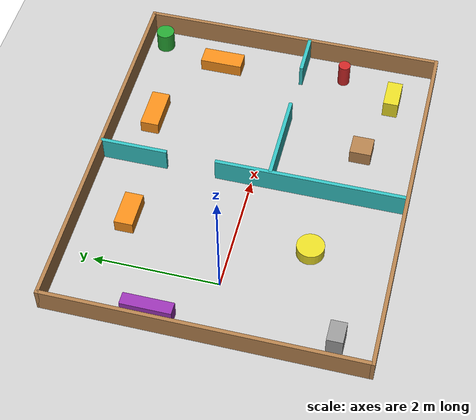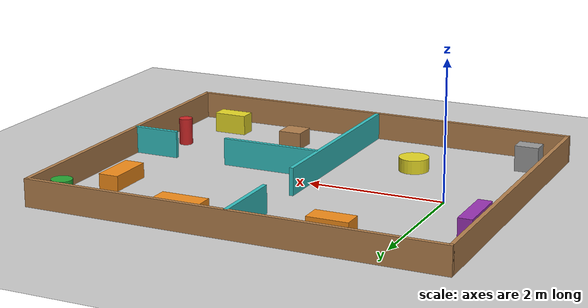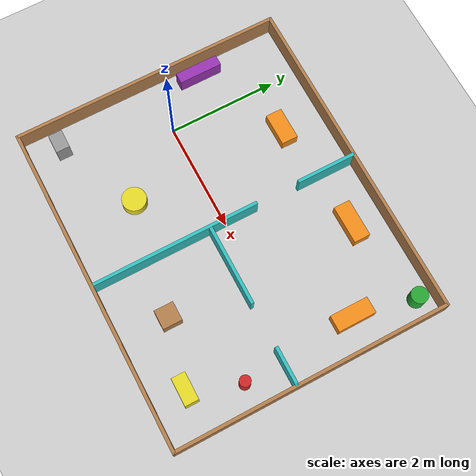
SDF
<?xml version="1.0"?>
<sdf version="1.6">
  <world name="recon_world">

    <!-- The robot is ~12 cm wide, so use a small, accurate time step. -->
    <physics type="ode">
      <max_step_size>0.001</max_step_size>
      <real_time_factor>1.0</real_time_factor>
      <real_time_update_rate>1000</real_time_update_rate>
      <ode>
        <solver>
          <type>quick</type>
          <iters>150</iters>
          <sor>1.3</sor>
        </solver>
        <constraints>
          <cfm>0.0</cfm>
          <erp>0.2</erp>
          <contact_max_correcting_vel>0.1</contact_max_correcting_vel>
          <contact_surface_layer>0.0005</contact_surface_layer>
        </constraints>
      </ode>
    </physics>

    <gravity>0 0 -9.81</gravity>

    <include><uri>model://sun</uri></include>

    <!-- flat ground with a grid so the robot's motion is easy to see -->
    <model name="ground">
      <static>true</static>
      <link name="link">
        <collision name="collision">
          <geometry><plane><normal>0 0 1</normal><size>40 40</size></plane></geometry>
          <surface>
            <friction><ode><mu>1.0</mu><mu2>1.0</mu2></ode></friction>
          </surface>
        </collision>
        <visual name="visual">
          <cast_shadows>false</cast_shadows>
          <geometry><plane><normal>0 0 1</normal><size>40 40</size></plane></geometry>
          <material><script>
            <uri>file://media/materials/scripts/gazebo.material</uri>
            <name>Gazebo/Grey</name>
          </script></material>
        </visual>
      </link>
    </model>

    <!-- publishes /gazebo/model_states so the robot pose can be plotted/echoed -->
    <plugin name="gazebo_ros_state" filename="libgazebo_ros_state.so">
      <ros><namespace>/gazebo</namespace></ros>
      <update_rate>20.0</update_rate>
    </plugin>

    <!-- ===== miniature office: 6 m x 5 m, three rooms, doorways 0.8 m wide ===== -->
    <model name="wall_n"><static>true</static><pose>2.0 2.5 0.2 0 0 0</pose><link name="l">
      <collision name="c"><geometry><box><size>6.06 0.06 0.4</size></box></geometry></collision>
      <visual name="v"><geometry><box><size>6.06 0.06 0.4</size></box></geometry><material><script><uri>file://media/materials/scripts/gazebo.material</uri><name>Gazebo/Wood</name></script></material></visual></link></model>
    <model name="wall_s"><static>true</static><pose>2.0 -2.5 0.2 0 0 0</pose><link name="l">
      <collision name="c"><geometry><box><size>6.06 0.06 0.4</size></box></geometry></collision>
      <visual name="v"><geometry><box><size>6.06 0.06 0.4</size></box></geometry><material><script><uri>file://media/materials/scripts/gazebo.material</uri><name>Gazebo/Wood</name></script></material></visual></link></model>
    <model name="wall_w"><static>true</static><pose>-1.0 0.0 0.2 0 0 0</pose><link name="l">
      <collision name="c"><geometry><box><size>0.06 5.0 0.4</size></box></geometry></collision>
      <visual name="v"><geometry><box><size>0.06 5.0 0.4</size></box></geometry><material><script><uri>file://media/materials/scripts/gazebo.material</uri><name>Gazebo/Wood</name></script></material></visual></link></model>
    <model name="wall_e"><static>true</static><pose>5.0 0.0 0.2 0 0 0</pose><link name="l">
      <collision name="c"><geometry><box><size>0.06 5.0 0.4</size></box></geometry></collision>
      <visual name="v"><geometry><box><size>0.06 5.0 0.4</size></box></geometry><material><script><uri>file://media/materials/scripts/gazebo.material</uri><name>Gazebo/Wood</name></script></material></visual></link></model>
    <model name="part1a"><static>true</static><pose>2.0 -0.95 0.2 0 0 0</pose><link name="l">
      <collision name="c"><geometry><box><size>0.06 3.1 0.4</size></box></geometry></collision>
      <visual name="v"><geometry><box><size>0.06 3.1 0.4</size></box></geometry><material><script><uri>file://media/materials/scripts/gazebo.material</uri><name>Gazebo/Turquoise</name></script></material></visual></link></model>
    <model name="part1b"><static>true</static><pose>2.0 1.95 0.2 0 0 0</pose><link name="l">
      <collision name="c"><geometry><box><size>0.06 1.1 0.4</size></box></geometry></collision>
      <visual name="v"><geometry><box><size>0.06 1.1 0.4</size></box></geometry><material><script><uri>file://media/materials/scripts/gazebo.material</uri><name>Gazebo/Turquoise</name></script></material></visual></link></model>
    <model name="part2a"><static>true</static><pose>2.75 -0.3 0.2 0 0 0</pose><link name="l">
      <collision name="c"><geometry><box><size>1.5 0.06 0.4</size></box></geometry></collision>
      <visual name="v"><geometry><box><size>1.5 0.06 0.4</size></box></geometry><material><script><uri>file://media/materials/scripts/gazebo.material</uri><name>Gazebo/Turquoise</name></script></material></visual></link></model>
    <model name="part2b"><static>true</static><pose>4.65 -0.3 0.2 0 0 0</pose><link name="l">
      <collision name="c"><geometry><box><size>0.7 0.06 0.4</size></box></geometry></collision>
      <visual name="v"><geometry><box><size>0.7 0.06 0.4</size></box></geometry><material><script><uri>file://media/materials/scripts/gazebo.material</uri><name>Gazebo/Turquoise</name></script></material></visual></link></model>
    <model name="desk_a"><static>true</static><pose>0.9 1.7 0.11 0 0 0</pose><link name="l">
      <collision name="c"><geometry><box><size>0.6 0.3 0.22</size></box></geometry></collision>
      <visual name="v"><geometry><box><size>0.6 0.3 0.22</size></box></geometry><material><script><uri>file://media/materials/scripts/gazebo.material</uri><name>Gazebo/Orange</name></script></material></visual></link></model>
    <model name="cabinet_a"><static>true</static><pose>-0.6 -1.9 0.19 0 0 0</pose><link name="l">
      <collision name="c"><geometry><box><size>0.35 0.25 0.38</size></box></geometry></collision>
      <visual name="v"><geometry><box><size>0.35 0.25 0.38</size></box></geometry><material><script><uri>file://media/materials/scripts/gazebo.material</uri><name>Gazebo/Grey</name></script></material></visual></link></model>
    <model name="table_a"><static>true</static><pose>0.9 -1.2 0.1 0 0 0</pose><link name="l">
      <collision name="c"><geometry><cylinder><radius>0.22</radius><length>0.20</length></cylinder></geometry></collision>
      <visual name="v"><geometry><cylinder><radius>0.22</radius><length>0.20</length></cylinder></geometry><material><script><uri>file://media/materials/scripts/gazebo.material</uri><name>Gazebo/Yellow</name></script></material></visual></link></model>
    <model name="shelf_a"><static>true</static><pose>-0.75 0.9 0.15 0 0 0</pose><link name="l">
      <collision name="c"><geometry><box><size>0.2 0.8 0.3</size></box></geometry></collision>
      <visual name="v"><geometry><box><size>0.2 0.8 0.3</size></box></geometry><material><script><uri>file://media/materials/scripts/gazebo.material</uri><name>Gazebo/Purple</name></script></material></visual></link></model>
    <model name="desk_b1"><static>true</static><pose>3.0 1.9 0.11 0 0 0</pose><link name="l">
      <collision name="c"><geometry><box><size>0.7 0.3 0.22</size></box></geometry></collision>
      <visual name="v"><geometry><box><size>0.7 0.3 0.22</size></box></geometry><material><script><uri>file://media/materials/scripts/gazebo.material</uri><name>Gazebo/Orange</name></script></material></visual></link></model>
    <model name="desk_b2"><static>true</static><pose>4.4 1.1 0.11 0 0 0</pose><link name="l">
      <collision name="c"><geometry><box><size>0.3 0.7 0.22</size></box></geometry></collision>
      <visual name="v"><geometry><box><size>0.3 0.7 0.22</size></box></geometry><material><script><uri>file://media/materials/scripts/gazebo.material</uri><name>Gazebo/Orange</name></script></material></visual></link></model>
    <model name="plant_b"><static>true</static><pose>4.65 2.2 0.175 0 0 0</pose><link name="l">
      <collision name="c"><geometry><cylinder><radius>0.15</radius><length>0.35</length></cylinder></geometry></collision>
      <visual name="v"><geometry><cylinder><radius>0.15</radius><length>0.35</length></cylinder></geometry><material><script><uri>file://media/materials/scripts/gazebo.material</uri><name>Gazebo/Green</name></script></material></visual></link></model>
    <model name="crate_c1"><static>true</static><pose>3.0 -1.6 0.125 0 0 0</pose><link name="l">
      <collision name="c"><geometry><box><size>0.35 0.35 0.25</size></box></geometry></collision>
      <visual name="v"><geometry><box><size>0.35 0.35 0.25</size></box></geometry><material><script><uri>file://media/materials/scripts/gazebo.material</uri><name>Gazebo/Wood</name></script></material></visual></link></model>
    <model name="crate_c2"><static>true</static><pose>4.2 -1.9 0.15 0 0 0</pose><link name="l">
      <collision name="c"><geometry><box><size>0.5 0.25 0.3</size></box></geometry></collision>
      <visual name="v"><geometry><box><size>0.5 0.25 0.3</size></box></geometry><material><script><uri>file://media/materials/scripts/gazebo.material</uri><name>Gazebo/Yellow</name></script></material></visual></link></model>
    <model name="pillar_c"><static>true</static><pose>4.55 -1.0 0.2 0 0 0</pose><link name="l">
      <collision name="c"><geometry><cylinder><radius>0.1</radius><length>0.4</length></cylinder></geometry></collision>
      <visual name="v"><geometry><cylinder><radius>0.1</radius><length>0.4</length></cylinder></geometry><material><script><uri>file://media/materials/scripts/gazebo.material</uri><name>Gazebo/Red</name></script></material></visual></link></model>

    <gui>
      <camera name="user_camera">
        <!-- overview of the whole office -->
        <pose>2.0 -0.3 6.5 0 1.5 1.5708</pose>
      </camera>
    </gui>

  </world>
</sdf>
